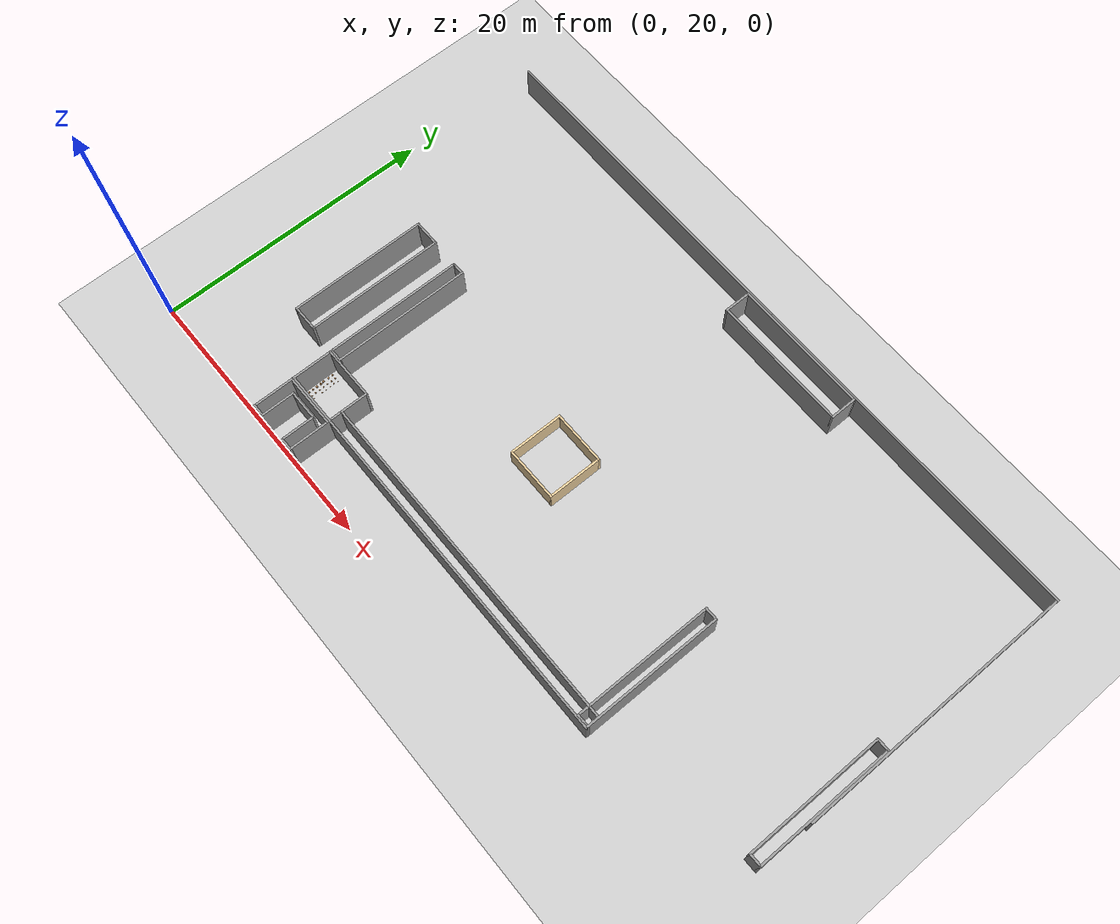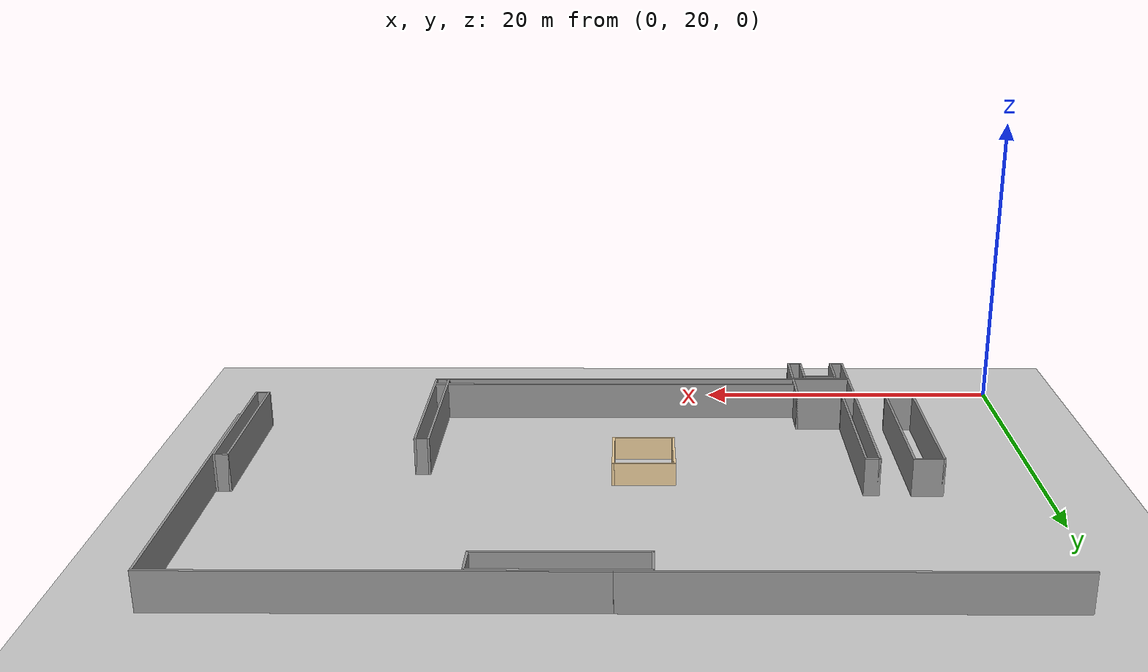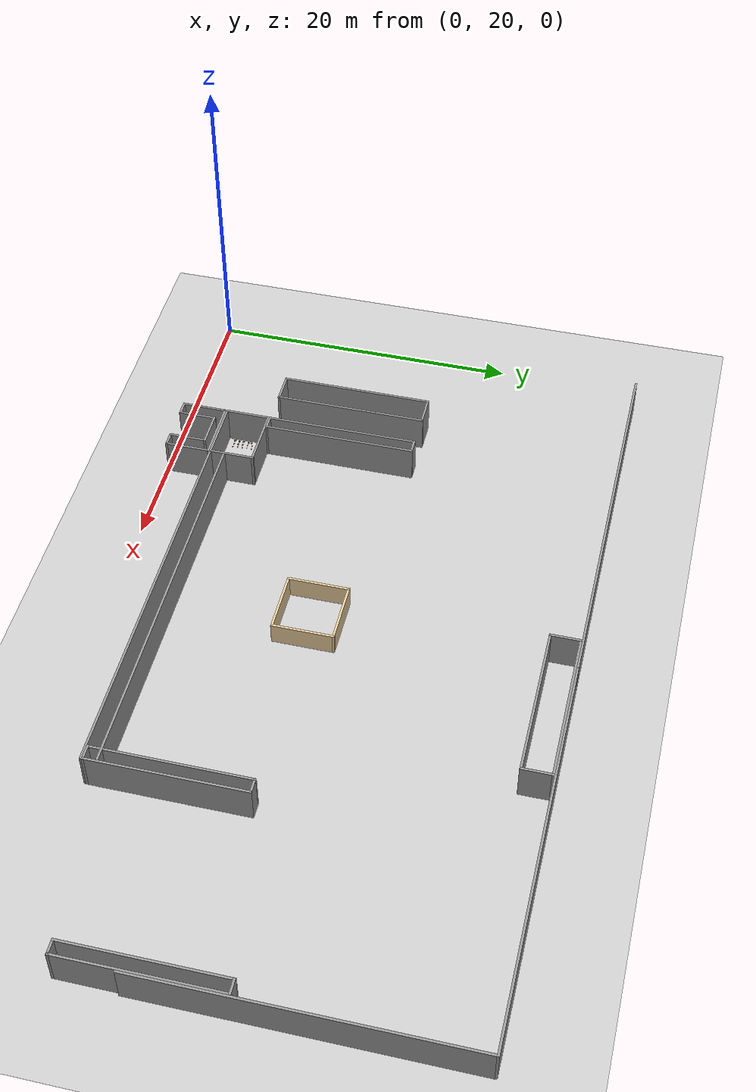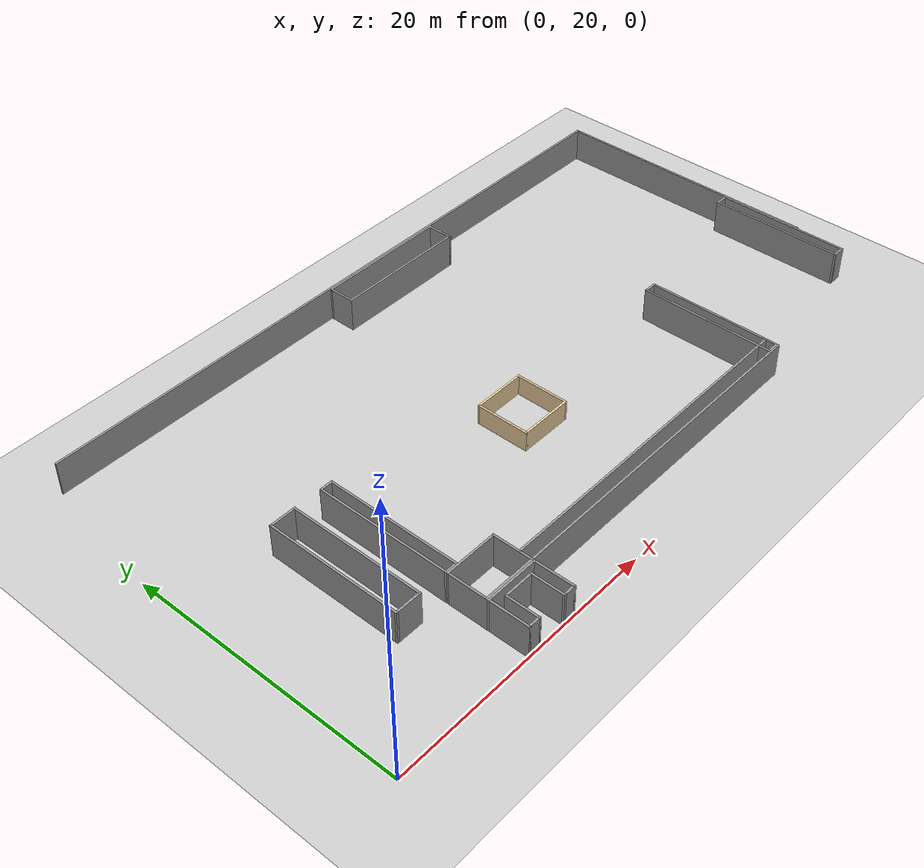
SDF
<sdf version="1.6">
 <world name="default">
  <model name="ground_plane">
   <static>1</static>
   <link name="link">
    <collision name="collision">
     <geometry><plane><normal>0 0 1</normal><size>105 105</size></plane></geometry>
     <surface>
      <contact><collide_bitmask>65535</collide_bitmask></contact>
      <friction><ode><mu>100</mu><mu2>50</mu2></ode></friction>
     </surface>
    </collision>
    <visual name="visual">
     <cast_shadows>0</cast_shadows>
     <geometry><plane><normal>0 0 1</normal><size>105 105</size></plane></geometry>
     <material>
      <script><uri>file://media/materials/scripts/gazebo.material</uri><name>Gazebo/Grey</name></script>
     </material>
    </visual>
   </link>
  </model>
  <model name="wall_25m_5">
   <pose>14.0033 49.3464 0 0 -0 0</pose>
   <link name="Wall_28">
    <collision name="Wall_28_Collision">
     <geometry><box><size>25 0.15 2.5</size></box></geometry>
     <pose>0 0 1.25 0 -0 0</pose>
    </collision>
    <visual name="Wall_28_Visual">
     <pose>0 0 1.25 0 -0 0</pose>
     <geometry><box><size>25 0.15 2.5</size></box></geometry>
     <material>
      <script><uri>file://media/materials/scripts/gazebo.material</uri><name>Gazebo/Grey</name></script>
      <ambient>1 1 1 1</ambient>
     </material>
     <meta><layer>0</layer></meta>
    </visual>
   </link>
   <static>1</static>
  </model>
  <model name="wall_25m_6">
   <pose>39.0043 49.3458 0 0 -0 0</pose>
   <link name="Wall_28">
    <collision name="Wall_28_Collision">
     <geometry><box><size>25 0.15 2.5</size></box></geometry>
     <pose>0 0 1.25 0 -0 0</pose>
    </collision>
    <visual name="Wall_28_Visual">
     <pose>0 0 1.25 0 -0 0</pose>
     <geometry><box><size>25 0.15 2.5</size></box></geometry>
     <material>
      <script><uri>file://media/materials/scripts/gazebo.material</uri><name>Gazebo/Grey</name></script>
      <ambient>1 1 1 1</ambient>
     </material>
     <meta><layer>0</layer></meta>
    </visual>
   </link>
   <static>1</static>
  </model>
  <model name="wall_v20m_6">
   <pose>51.4317 39.2751 0 0 -0 0</pose>
   <link name="Wall_35">
    <collision name="Wall_35_Collision">
     <geometry><box><size>20 0.15 2.5</size></box></geometry>
     <pose>0 0 1.25 0 -0 0</pose>
    </collision>
    <visual name="Wall_35_Visual">
     <pose>0 0 1.25 0 -0 0</pose>
     <geometry><box><size>20 0.15 2.5</size></box></geometry>
     <material>
      <script><uri>file://media/materials/scripts/gazebo.material</uri><name>Gazebo/Grey</name></script>
      <ambient>1 1 1 1</ambient>
     </material>
     <meta><layer>0</layer></meta>
    </visual>
    <pose>0 -0 0 0 -0 -1.5708</pose>
   </link>
   <static>1</static>
  </model>
  <model name="base10x1">
   <pose>10.8397 30.9726 0 0 -0 0</pose>
   <link name="Wall_15">
    <collision name="Wall_15_Collision">
     <geometry><box><size>10 0.15 2.5</size></box></geometry>
     <pose>0 0 1.25 0 -0 0</pose>
    </collision>
    <visual name="Wall_15_Visual">
     <pose>0 0 1.25 0 -0 0</pose>
     <geometry><box><size>10 0.15 2.5</size></box></geometry>
     <material>
      <script><uri>file://media/materials/scripts/gazebo.material</uri><name>Gazebo/Grey</name></script>
      <ambient>1 1 1 1</ambient>
     </material>
     <meta><layer>0</layer></meta>
    </visual>
    <pose>-0.425 0 0 0 -0 1.5708</pose>
   </link>
   <link name="Wall_16">
    <collision name="Wall_16_Collision">
     <geometry><box><size>1 0.15 2.5</size></box></geometry>
     <pose>0 0 1.25 0 -0 0</pose>
    </collision>
    <visual name="Wall_16_Visual">
     <pose>0 0 1.25 0 -0 0</pose>
     <geometry><box><size>1 0.15 2.5</size></box></geometry>
     <material>
      <script><uri>file://media/materials/scripts/gazebo.material</uri><name>Gazebo/Grey</name></script>
      <ambient>1 1 1 1</ambient>
     </material>
     <meta><layer>0</layer></meta>
    </visual>
    <pose>0 4.925 0 0 -0 0</pose>
   </link>
   <link name="Wall_17">
    <collision name="Wall_17_Collision">
     <geometry><box><size>10 0.15 2.5</size></box></geometry>
     <pose>0 0 1.25 0 -0 0</pose>
    </collision>
    <visual name="Wall_17_Visual">
     <pose>0 0 1.25 0 -0 0</pose>
     <geometry><box><size>10 0.15 2.5</size></box></geometry>
     <material>
      <script><uri>file://media/materials/scripts/gazebo.material</uri><name>Gazebo/Grey</name></script>
      <ambient>1 1 1 1</ambient>
     </material>
     <meta><layer>0</layer></meta>
    </visual>
    <pose>0.425 0 0 0 -0 -1.5708</pose>
   </link>
   <link name="Wall_18">
    <collision name="Wall_18_Collision">
     <geometry><box><size>1 0.15 2.5</size></box></geometry>
     <pose>0 0 1.25 0 -0 0</pose>
    </collision>
    <visual name="Wall_18_Visual">
     <pose>0 0 1.25 0 -0 0</pose>
     <geometry><box><size>1 0.15 2.5</size></box></geometry>
     <material>
      <script><uri>file://media/materials/scripts/gazebo.material</uri><name>Gazebo/Grey</name></script>
      <ambient>1 1 1 1</ambient>
     </material>
     <meta><layer>0</layer></meta>
    </visual>
    <pose>0 -4.925 0 0 -0 3.14159</pose>
   </link>
   <static>1</static>
  </model>
  <model name="base3x4_30">
   <pose>12.3458 24.5057 0 0 -0 0</pose>
   <link name="Wall_18">
    <collision name="Wall_18_Collision">
     <geometry><box><size>3 0.15 2.5</size></box></geometry>
     <pose>0 0 1.25 0 -0 0</pose>
    </collision>
    <visual name="Wall_18_Visual">
     <pose>0 0 1.25 0 -0 0</pose>
     <geometry><box><size>3 0.15 2.5</size></box></geometry>
     <material>
      <script><uri>file://media/materials/scripts/gazebo.material</uri><name>Gazebo/Grey</name></script>
      <ambient>1 1 1 1</ambient>
     </material>
     <meta><layer>0</layer></meta>
    </visual>
    <pose>-1.925 -0 0 0 -0 -1.5708</pose>
   </link>
   <link name="Wall_19">
    <collision name="Wall_19_Collision">
     <geometry><box><size>4 0.15 2.5</size></box></geometry>
     <pose>0 0 1.25 0 -0 0</pose>
    </collision>
    <visual name="Wall_19_Visual">
     <pose>0 0 1.25 0 -0 0</pose>
     <geometry><box><size>4 0.15 2.5</size></box></geometry>
     <material>
      <script><uri>file://media/materials/scripts/gazebo.material</uri><name>Gazebo/Grey</name></script>
      <ambient>1 1 1 1</ambient>
     </material>
     <meta><layer>0</layer></meta>
    </visual>
    <pose>-0 -1.425 0 0 -0 0</pose>
   </link>
   <link name="Wall_20">
    <collision name="Wall_20_Collision">
     <geometry><box><size>3 0.15 2.5</size></box></geometry>
     <pose>0 0 1.25 0 -0 0</pose>
    </collision>
    <visual name="Wall_20_Visual">
     <pose>0 0 1.25 0 -0 0</pose>
     <geometry><box><size>3 0.15 2.5</size></box></geometry>
     <material>
      <script><uri>file://media/materials/scripts/gazebo.material</uri><name>Gazebo/Grey</name></script>
      <ambient>1 1 1 1</ambient>
     </material>
     <meta><layer>0</layer></meta>
    </visual>
    <pose>1.925 -0 0 0 -0 1.5708</pose>
   </link>
   <link name="Wall_21">
    <collision name="Wall_21_Collision">
     <geometry><box><size>4 0.15 2.5</size></box></geometry>
     <pose>0 0 1.25 0 -0 0</pose>
    </collision>
    <visual name="Wall_21_Visual">
     <pose>0 0 1.25 0 -0 0</pose>
     <geometry><box><size>4 0.15 2.5</size></box></geometry>
     <material>
      <script><uri>file://media/materials/scripts/gazebo.material</uri><name>Gazebo/Grey</name></script>
      <ambient>1 1 1 1</ambient>
     </material>
     <meta><layer>0</layer></meta>
    </visual>
    <pose>-0 1.425 0 0 -0 3.14159</pose>
   </link>
   <static>1</static>
  </model>
  <model name="wall_25m_0">
   <pose>26.8412 23.0792 0 0 -0 0</pose>
   <link name="Wall_28">
    <collision name="Wall_28_Collision">
     <geometry><box><size>25 0.15 2.5</size></box></geometry>
     <pose>0 0 1.25 0 -0 0</pose>
    </collision>
    <visual name="Wall_28_Visual">
     <pose>0 0 1.25 0 -0 0</pose>
     <geometry><box><size>25 0.15 2.5</size></box></geometry>
     <material>
      <script><uri>file://media/materials/scripts/gazebo.material</uri><name>Gazebo/Grey</name></script>
      <ambient>1 1 1 1</ambient>
     </material>
     <meta><layer>0</layer></meta>
    </visual>
   </link>
   <static>1</static>
  </model>
  <model name="base10x1_1">
   <pose>38.8563 28.1195 0 0 -0 0</pose>
   <link name="Wall_15">
    <collision name="Wall_15_Collision">
     <geometry><box><size>10 0.15 2.5</size></box></geometry>
     <pose>0 0 1.25 0 -0 0</pose>
    </collision>
    <visual name="Wall_15_Visual">
     <pose>0 0 1.25 0 -0 0</pose>
     <geometry><box><size>10 0.15 2.5</size></box></geometry>
     <material>
      <script><uri>file://media/materials/scripts/gazebo.material</uri><name>Gazebo/Grey</name></script>
      <ambient>1 1 1 1</ambient>
     </material>
     <meta><layer>0</layer></meta>
    </visual>
    <pose>-0.425 0 0 0 -0 1.5708</pose>
   </link>
   <link name="Wall_16">
    <collision name="Wall_16_Collision">
     <geometry><box><size>1 0.15 2.5</size></box></geometry>
     <pose>0 0 1.25 0 -0 0</pose>
    </collision>
    <visual name="Wall_16_Visual">
     <pose>0 0 1.25 0 -0 0</pose>
     <geometry><box><size>1 0.15 2.5</size></box></geometry>
     <material>
      <script><uri>file://media/materials/scripts/gazebo.material</uri><name>Gazebo/Grey</name></script>
      <ambient>1 1 1 1</ambient>
     </material>
     <meta><layer>0</layer></meta>
    </visual>
    <pose>0 4.925 0 0 -0 0</pose>
   </link>
   <link name="Wall_17">
    <collision name="Wall_17_Collision">
     <geometry><box><size>10 0.15 2.5</size></box></geometry>
     <pose>0 0 1.25 0 -0 0</pose>
    </collision>
    <visual name="Wall_17_Visual">
     <pose>0 0 1.25 0 -0 0</pose>
     <geometry><box><size>10 0.15 2.5</size></box></geometry>
     <material>
      <script><uri>file://media/materials/scripts/gazebo.material</uri><name>Gazebo/Grey</name></script>
      <ambient>1 1 1 1</ambient>
     </material>
     <meta><layer>0</layer></meta>
    </visual>
    <pose>0.425 0 0 0 -0 -1.5708</pose>
   </link>
   <link name="Wall_18">
    <collision name="Wall_18_Collision">
     <geometry><box><size>1 0.15 2.5</size></box></geometry>
     <pose>0 0 1.25 0 -0 0</pose>
    </collision>
    <visual name="Wall_18_Visual">
     <pose>0 0 1.25 0 -0 0</pose>
     <geometry><box><size>1 0.15 2.5</size></box></geometry>
     <material>
      <script><uri>file://media/materials/scripts/gazebo.material</uri><name>Gazebo/Grey</name></script>
      <ambient>1 1 1 1</ambient>
     </material>
     <meta><layer>0</layer></meta>
    </visual>
    <pose>0 -4.925 0 0 -0 3.14159</pose>
   </link>
   <static>1</static>
  </model>
  <model name="wall_25m_2">
   <pose>26.7296 24.0129 0 0 -0 0</pose>
   <link name="Wall_28">
    <collision name="Wall_28_Collision">
     <geometry><box><size>25 0.15 2.5</size></box></geometry>
     <pose>0 0 1.25 0 -0 0</pose>
    </collision>
    <visual name="Wall_28_Visual">
     <pose>0 0 1.25 0 -0 0</pose>
     <geometry><box><size>25 0.15 2.5</size></box></geometry>
     <material>
      <script><uri>file://media/materials/scripts/gazebo.material</uri><name>Gazebo/Grey</name></script>
      <ambient>1 1 1 1</ambient>
     </material>
     <meta><layer>0</layer></meta>
    </visual>
   </link>
   <static>1</static>
  </model>
  <model name="wood_cube_10cm">
   <link name="link">
    <pose>0 0 0.05 0 -0 0</pose>
    <inertial>
     <mass>0.5167</mass>
     <inertia>
      <ixx>0.000861167</ixx>
      <ixy>0</ixy>
      <ixz>0</ixz>
      <iyy>0.000861167</iyy>
      <iyz>0</iyz>
      <izz>0.000861167</izz>
     </inertia>
    </inertial>
    <collision name="collision">
     <geometry><box><size>0.1 0.1 0.1</size></box></geometry>
     <surface>
      <contact>
       <poissons_ratio>0.347</poissons_ratio>
       <elastic_modulus>8.8e+09</elastic_modulus>
       <ode><kp>100000</kp><kd>100</kd><max_vel>100</max_vel><min_depth>0.001</min_depth></ode>
      </contact>
      <friction>
       <torsional>
        <coefficient>1</coefficient>
        <use_patch_radius>0</use_patch_radius>
        <surface_radius>0.01</surface_radius>
       </torsional>
      </friction>
     </surface>
    </collision>
    <visual name="visual">
     <geometry><box><size>0.1 0.1 0.1</size></box></geometry>
     <material>
      <script><uri>file://media/materials/scripts/gazebo.material</uri><name>Gazebo/Wood</name></script>
     </material>
    </visual>
   </link>
   <pose>10.6933 23.5723 -0.001013 0 -0 0</pose>
  </model>
  <model name="wood_cube_10cm_0">
   <link name="link">
    <pose>0 0 0.05 0 -0 0</pose>
    <inertial>
     <mass>0.5167</mass>
     <inertia>
      <ixx>0.000861167</ixx>
      <ixy>0</ixy>
      <ixz>0</ixz>
      <iyy>0.000861167</iyy>
      <iyz>0</iyz>
      <izz>0.000861167</izz>
     </inertia>
    </inertial>
    <collision name="collision">
     <geometry><box><size>0.1 0.1 0.1</size></box></geometry>
     <surface>
      <contact>
       <poissons_ratio>0.347</poissons_ratio>
       <elastic_modulus>8.8e+09</elastic_modulus>
       <ode><kp>100000</kp><kd>100</kd><max_vel>100</max_vel><min_depth>0.001</min_depth></ode>
      </contact>
      <friction>
       <torsional>
        <coefficient>1</coefficient>
        <use_patch_radius>0</use_patch_radius>
        <surface_radius>0.01</surface_radius>
       </torsional>
      </friction>
     </surface>
    </collision>
    <visual name="visual">
     <geometry><box><size>0.1 0.1 0.1</size></box></geometry>
     <material>
      <script><uri>file://media/materials/scripts/gazebo.material</uri><name>Gazebo/Wood</name></script>
     </material>
    </visual>
   </link>
   <pose>10.69 23.8636 -0.001013 0 -0 0</pose>
  </model>
  <model name="wood_cube_10cm_1">
   <link name="link">
    <pose>0 0 0.05 0 -0 0</pose>
    <inertial>
     <mass>0.5167</mass>
     <inertia>
      <ixx>0.000861167</ixx>
      <ixy>0</ixy>
      <ixz>0</ixz>
      <iyy>0.000861167</iyy>
      <iyz>0</iyz>
      <izz>0.000861167</izz>
     </inertia>
    </inertial>
    <collision name="collision">
     <geometry><box><size>0.1 0.1 0.1</size></box></geometry>
     <surface>
      <contact>
       <poissons_ratio>0.347</poissons_ratio>
       <elastic_modulus>8.8e+09</elastic_modulus>
       <ode><kp>100000</kp><kd>100</kd><max_vel>100</max_vel><min_depth>0.001</min_depth></ode>
      </contact>
      <friction>
       <torsional>
        <coefficient>1</coefficient>
        <use_patch_radius>0</use_patch_radius>
        <surface_radius>0.01</surface_radius>
       </torsional>
      </friction>
     </surface>
    </collision>
    <visual name="visual">
     <geometry><box><size>0.1 0.1 0.1</size></box></geometry>
     <material>
      <script><uri>file://media/materials/scripts/gazebo.material</uri><name>Gazebo/Wood</name></script>
     </material>
    </visual>
   </link>
   <pose>10.6798 24.1748 -0.001013 0 -0 0</pose>
  </model>
  <model name="wood_cube_10cm_2">
   <link name="link">
    <pose>0 0 0.05 0 -0 0</pose>
    <inertial>
     <mass>0.5167</mass>
     <inertia>
      <ixx>0.000861167</ixx>
      <ixy>0</ixy>
      <ixz>0</ixz>
      <iyy>0.000861167</iyy>
      <iyz>0</iyz>
      <izz>0.000861167</izz>
     </inertia>
    </inertial>
    <collision name="collision">
     <geometry><box><size>0.1 0.1 0.1</size></box></geometry>
     <surface>
      <contact>
       <poissons_ratio>0.347</poissons_ratio>
       <elastic_modulus>8.8e+09</elastic_modulus>
       <ode><kp>100000</kp><kd>100</kd><max_vel>100</max_vel><min_depth>0.001</min_depth></ode>
      </contact>
      <friction>
       <torsional>
        <coefficient>1</coefficient>
        <use_patch_radius>0</use_patch_radius>
        <surface_radius>0.01</surface_radius>
       </torsional>
      </friction>
     </surface>
    </collision>
    <visual name="visual">
     <geometry><box><size>0.1 0.1 0.1</size></box></geometry>
     <material>
      <script><uri>file://media/materials/scripts/gazebo.material</uri><name>Gazebo/Wood</name></script>
     </material>
    </visual>
   </link>
   <pose>10.676 24.5061 -0.001013 0 -0 0</pose>
  </model>
  <model name="wood_cube_10cm_3">
   <link name="link">
    <pose>0 0 0.05 0 -0 0</pose>
    <inertial>
     <mass>0.5167</mass>
     <inertia>
      <ixx>0.000861167</ixx>
      <ixy>0</ixy>
      <ixz>0</ixz>
      <iyy>0.000861167</iyy>
      <iyz>0</iyz>
      <izz>0.000861167</izz>
     </inertia>
    </inertial>
    <collision name="collision">
     <geometry><box><size>0.1 0.1 0.1</size></box></geometry>
     <surface>
      <contact>
       <poissons_ratio>0.347</poissons_ratio>
       <elastic_modulus>8.8e+09</elastic_modulus>
       <ode><kp>100000</kp><kd>100</kd><max_vel>100</max_vel><min_depth>0.001</min_depth></ode>
      </contact>
      <friction>
       <torsional>
        <coefficient>1</coefficient>
        <use_patch_radius>0</use_patch_radius>
        <surface_radius>0.01</surface_radius>
       </torsional>
      </friction>
     </surface>
    </collision>
    <visual name="visual">
     <geometry><box><size>0.1 0.1 0.1</size></box></geometry>
     <material>
      <script><uri>file://media/materials/scripts/gazebo.material</uri><name>Gazebo/Wood</name></script>
     </material>
    </visual>
   </link>
   <pose>10.6607 24.7274 -0.001013 0 0 -1.09026</pose>
  </model>
  <model name="wood_cube_10cm_4">
   <link name="link">
    <pose>0 0 0.05 0 -0 0</pose>
    <inertial>
     <mass>0.5167</mass>
     <inertia>
      <ixx>0.000861167</ixx>
      <ixy>0</ixy>
      <ixz>0</ixz>
      <iyy>0.000861167</iyy>
      <iyz>0</iyz>
      <izz>0.000861167</izz>
     </inertia>
    </inertial>
    <collision name="collision">
     <geometry><box><size>0.1 0.1 0.1</size></box></geometry>
     <surface>
      <contact>
       <poissons_ratio>0.347</poissons_ratio>
       <elastic_modulus>8.8e+09</elastic_modulus>
       <ode><kp>100000</kp><kd>100</kd><max_vel>100</max_vel><min_depth>0.001</min_depth></ode>
      </contact>
      <friction>
       <torsional>
        <coefficient>1</coefficient>
        <use_patch_radius>0</use_patch_radius>
        <surface_radius>0.01</surface_radius>
       </torsional>
      </friction>
     </surface>
    </collision>
    <visual name="visual">
     <geometry><box><size>0.1 0.1 0.1</size></box></geometry>
     <material>
      <script><uri>file://media/materials/scripts/gazebo.material</uri><name>Gazebo/Wood</name></script>
     </material>
    </visual>
   </link>
   <pose>10.6691 25.1156 -0.001013 0 -0 0</pose>
  </model>
  <model name="wood_cube_10cm_5">
   <link name="link">
    <pose>0 0 0.05 0 -0 0</pose>
    <inertial>
     <mass>0.5167</mass>
     <inertia>
      <ixx>0.000861167</ixx>
      <ixy>0</ixy>
      <ixz>0</ixz>
      <iyy>0.000861167</iyy>
      <iyz>0</iyz>
      <izz>0.000861167</izz>
     </inertia>
    </inertial>
    <collision name="collision">
     <geometry><box><size>0.1 0.1 0.1</size></box></geometry>
     <surface>
      <contact>
       <poissons_ratio>0.347</poissons_ratio>
       <elastic_modulus>8.8e+09</elastic_modulus>
       <ode><kp>100000</kp><kd>100</kd><max_vel>100</max_vel><min_depth>0.001</min_depth></ode>
      </contact>
      <friction>
       <torsional>
        <coefficient>1</coefficient>
        <use_patch_radius>0</use_patch_radius>
        <surface_radius>0.01</surface_radius>
       </torsional>
      </friction>
     </surface>
    </collision>
    <visual name="visual">
     <geometry><box><size>0.1 0.1 0.1</size></box></geometry>
     <material>
      <script><uri>file://media/materials/scripts/gazebo.material</uri><name>Gazebo/Wood</name></script>
     </material>
    </visual>
   </link>
   <pose>10.6522 25.4397 -0.001013 0 -0 0</pose>
  </model>
  <model name="wood_cube_7_5cm">
   <link name="link">
    <pose>0 0 0.0375 0 -0 0</pose>
    <inertial>
     <mass>0.2249</mass>
     <inertia>
      <ixx>0.000210844</ixx>
      <ixy>0</ixy>
      <ixz>0</ixz>
      <iyy>0.000210844</iyy>
      <iyz>0</iyz>
      <izz>0.000210844</izz>
     </inertia>
    </inertial>
    <collision name="collision">
     <geometry><box><size>0.075 0.075 0.075</size></box></geometry>
     <surface>
      <contact>
       <poissons_ratio>0.347</poissons_ratio>
       <elastic_modulus>8.8e+09</elastic_modulus>
       <ode><kp>100000</kp><kd>100</kd><max_vel>100</max_vel><min_depth>0.001</min_depth></ode>
      </contact>
      <friction>
       <torsional>
        <coefficient>1</coefficient>
        <use_patch_radius>0</use_patch_radius>
        <surface_radius>0.01</surface_radius>
       </torsional>
      </friction>
     </surface>
    </collision>
    <visual name="visual">
     <geometry><box><size>0.075 0.075 0.075</size></box></geometry>
     <material>
      <script><uri>file://media/materials/scripts/gazebo.material</uri><name>Gazebo/Wood</name></script>
     </material>
    </visual>
   </link>
   <pose>11.0047 23.569 -0.001006 -0 -0 -0</pose>
  </model>
  <model name="wood_cube_7_5cm_0">
   <link name="link">
    <pose>0 0 0.0375 0 -0 0</pose>
    <inertial>
     <mass>0.2249</mass>
     <inertia>
      <ixx>0.000210844</ixx>
      <ixy>0</ixy>
      <ixz>0</ixz>
      <iyy>0.000210844</iyy>
      <iyz>0</iyz>
      <izz>0.000210844</izz>
     </inertia>
    </inertial>
    <collision name="collision">
     <geometry><box><size>0.075 0.075 0.075</size></box></geometry>
     <surface>
      <contact>
       <poissons_ratio>0.347</poissons_ratio>
       <elastic_modulus>8.8e+09</elastic_modulus>
       <ode><kp>100000</kp><kd>100</kd><max_vel>100</max_vel><min_depth>0.001</min_depth></ode>
      </contact>
      <friction>
       <torsional>
        <coefficient>1</coefficient>
        <use_patch_radius>0</use_patch_radius>
        <surface_radius>0.01</surface_radius>
       </torsional>
      </friction>
     </surface>
    </collision>
    <visual name="visual">
     <geometry><box><size>0.075 0.075 0.075</size></box></geometry>
     <material>
      <script><uri>file://media/materials/scripts/gazebo.material</uri><name>Gazebo/Wood</name></script>
     </material>
    </visual>
   </link>
   <pose>10.9881 23.8737 -0.001006 -0 -0 -0</pose>
  </model>
  <model name="wood_cube_7_5cm_1">
   <link name="link">
    <pose>0 0 0.0375 0 -0 0</pose>
    <inertial>
     <mass>0.2249</mass>
     <inertia>
      <ixx>0.000210844</ixx>
      <ixy>0</ixy>
      <ixz>0</ixz>
      <iyy>0.000210844</iyy>
      <iyz>0</iyz>
      <izz>0.000210844</izz>
     </inertia>
    </inertial>
    <collision name="collision">
     <geometry><box><size>0.075 0.075 0.075</size></box></geometry>
     <surface>
      <contact>
       <poissons_ratio>0.347</poissons_ratio>
       <elastic_modulus>8.8e+09</elastic_modulus>
       <ode><kp>100000</kp><kd>100</kd><max_vel>100</max_vel><min_depth>0.001</min_depth></ode>
      </contact>
      <friction>
       <torsional>
        <coefficient>1</coefficient>
        <use_patch_radius>0</use_patch_radius>
        <surface_radius>0.01</surface_radius>
       </torsional>
      </friction>
     </surface>
    </collision>
    <visual name="visual">
     <geometry><box><size>0.075 0.075 0.075</size></box></geometry>
     <material>
      <script><uri>file://media/materials/scripts/gazebo.material</uri><name>Gazebo/Wood</name></script>
     </material>
    </visual>
   </link>
   <pose>10.9777 24.1915 -0.001006 -0 -0 -0</pose>
  </model>
  <model name="wood_cube_7_5cm_2">
   <link name="link">
    <pose>0 0 0.0375 0 -0 0</pose>
    <inertial>
     <mass>0.2249</mass>
     <inertia>
      <ixx>0.000210844</ixx>
      <ixy>0</ixy>
      <ixz>0</ixz>
      <iyy>0.000210844</iyy>
      <iyz>0</iyz>
      <izz>0.000210844</izz>
     </inertia>
    </inertial>
    <collision name="collision">
     <geometry><box><size>0.075 0.075 0.075</size></box></geometry>
     <surface>
      <contact>
       <poissons_ratio>0.347</poissons_ratio>
       <elastic_modulus>8.8e+09</elastic_modulus>
       <ode><kp>100000</kp><kd>100</kd><max_vel>100</max_vel><min_depth>0.001</min_depth></ode>
      </contact>
      <friction>
       <torsional>
        <coefficient>1</coefficient>
        <use_patch_radius>0</use_patch_radius>
        <surface_radius>0.01</surface_radius>
       </torsional>
      </friction>
     </surface>
    </collision>
    <visual name="visual">
     <geometry><box><size>0.075 0.075 0.075</size></box></geometry>
     <material>
      <script><uri>file://media/materials/scripts/gazebo.material</uri><name>Gazebo/Wood</name></script>
     </material>
    </visual>
   </link>
   <pose>10.9676 24.5094 -0.001006 -0 -0 -0</pose>
  </model>
  <model name="wood_cube_7_5cm_3">
   <link name="link">
    <pose>0 0 0.0375 0 -0 0</pose>
    <inertial>
     <mass>0.2249</mass>
     <inertia>
      <ixx>0.000210844</ixx>
      <ixy>0</ixy>
      <ixz>0</ixz>
      <iyy>0.000210844</iyy>
      <iyz>0</iyz>
      <izz>0.000210844</izz>
     </inertia>
    </inertial>
    <collision name="collision">
     <geometry><box><size>0.075 0.075 0.075</size></box></geometry>
     <surface>
      <contact>
       <poissons_ratio>0.347</poissons_ratio>
       <elastic_modulus>8.8e+09</elastic_modulus>
       <ode><kp>100000</kp><kd>100</kd><max_vel>100</max_vel><min_depth>0.001</min_depth></ode>
      </contact>
      <friction>
       <torsional>
        <coefficient>1</coefficient>
        <use_patch_radius>0</use_patch_radius>
        <surface_radius>0.01</surface_radius>
       </torsional>
      </friction>
     </surface>
    </collision>
    <visual name="visual">
     <geometry><box><size>0.075 0.075 0.075</size></box></geometry>
     <material>
      <script><uri>file://media/materials/scripts/gazebo.material</uri><name>Gazebo/Wood</name></script>
     </material>
    </visual>
   </link>
   <pose>10.9506 24.8272 -0.001006 0 -0 1.5e-05</pose>
  </model>
  <model name="wood_cube_7_5cm_4">
   <link name="link">
    <pose>0 0 0.0375 0 -0 0</pose>
    <inertial>
     <mass>0.2249</mass>
     <inertia>
      <ixx>0.000210844</ixx>
      <ixy>0</ixy>
      <ixz>0</ixz>
      <iyy>0.000210844</iyy>
      <iyz>0</iyz>
      <izz>0.000210844</izz>
     </inertia>
    </inertial>
    <collision name="collision">
     <geometry><box><size>0.075 0.075 0.075</size></box></geometry>
     <surface>
      <contact>
       <poissons_ratio>0.347</poissons_ratio>
       <elastic_modulus>8.8e+09</elastic_modulus>
       <ode><kp>100000</kp><kd>100</kd><max_vel>100</max_vel><min_depth>0.001</min_depth></ode>
      </contact>
      <friction>
       <torsional>
        <coefficient>1</coefficient>
        <use_patch_radius>0</use_patch_radius>
        <surface_radius>0.01</surface_radius>
       </torsional>
      </friction>
     </surface>
    </collision>
    <visual name="visual">
     <geometry><box><size>0.075 0.075 0.075</size></box></geometry>
     <material>
      <script><uri>file://media/materials/scripts/gazebo.material</uri><name>Gazebo/Wood</name></script>
     </material>
    </visual>
   </link>
   <pose>10.9473 25.1252 -0.001006 0 -0 5e-06</pose>
  </model>
  <model name="wood_cube_7_5cm_5">
   <link name="link">
    <pose>0 0 0.0375 0 -0 0</pose>
    <inertial>
     <mass>0.2249</mass>
     <inertia>
      <ixx>0.000210844</ixx>
      <ixy>0</ixy>
      <ixz>0</ixz>
      <iyy>0.000210844</iyy>
      <iyz>0</iyz>
      <izz>0.000210844</izz>
     </inertia>
    </inertial>
    <collision name="collision">
     <geometry><box><size>0.075 0.075 0.075</size></box></geometry>
     <surface>
      <contact>
       <poissons_ratio>0.347</poissons_ratio>
       <elastic_modulus>8.8e+09</elastic_modulus>
       <ode><kp>100000</kp><kd>100</kd><max_vel>100</max_vel><min_depth>0.001</min_depth></ode>
      </contact>
      <friction>
       <torsional>
        <coefficient>1</coefficient>
        <use_patch_radius>0</use_patch_radius>
        <surface_radius>0.01</surface_radius>
       </torsional>
      </friction>
     </surface>
    </collision>
    <visual name="visual">
     <geometry><box><size>0.075 0.075 0.075</size></box></geometry>
     <material>
      <script><uri>file://media/materials/scripts/gazebo.material</uri><name>Gazebo/Wood</name></script>
     </material>
    </visual>
   </link>
   <pose>10.9436 25.4497 -0.001006 -0 -0 -0</pose>
  </model>
  <model name="wood_cube_5cm">
   <link name="link">
    <pose>0 0 0.025 0 -0 0</pose>
    <inertial>
     <mass>0.0565</mass>
     <inertia>
      <ixx>2.35417e-05</ixx>
      <ixy>0</ixy>
      <ixz>0</ixz>
      <iyy>2.35417e-05</iyy>
      <iyz>0</iyz>
      <izz>2.35417e-05</izz>
     </inertia>
    </inertial>
    <collision name="collision">
     <geometry><box><size>0.05 0.05 0.05</size></box></geometry>
     <surface>
      <contact>
       <poissons_ratio>0.347</poissons_ratio>
       <elastic_modulus>8.8e+09</elastic_modulus>
       <ode><kp>100000</kp><kd>1</kd><max_vel>1</max_vel><min_depth>0.001</min_depth></ode>
      </contact>
      <friction>
       <torsional>
        <coefficient>1</coefficient>
        <use_patch_radius>0</use_patch_radius>
        <surface_radius>0.05</surface_radius>
       </torsional>
      </friction>
     </surface>
    </collision>
    <visual name="visual">
     <geometry><box><size>0.05 0.05 0.05</size></box></geometry>
     <material>
      <script><uri>file://media/materials/scripts/gazebo.material</uri><name>Gazebo/Wood</name></script>
     </material>
    </visual>
   </link>
   <pose>11.2698 23.5655 -0.001001 0 -0 0</pose>
  </model>
  <model name="wood_cube_5cm_0">
   <link name="link">
    <pose>0 0 0.025 0 -0 0</pose>
    <inertial>
     <mass>0.0565</mass>
     <inertia>
      <ixx>2.35417e-05</ixx>
      <ixy>0</ixy>
      <ixz>0</ixz>
      <iyy>2.35417e-05</iyy>
      <iyz>0</iyz>
      <izz>2.35417e-05</izz>
     </inertia>
    </inertial>
    <collision name="collision">
     <geometry><box><size>0.05 0.05 0.05</size></box></geometry>
     <surface>
      <contact>
       <poissons_ratio>0.347</poissons_ratio>
       <elastic_modulus>8.8e+09</elastic_modulus>
       <ode><kp>100000</kp><kd>1</kd><max_vel>1</max_vel><min_depth>0.001</min_depth></ode>
      </contact>
      <friction>
       <torsional>
        <coefficient>1</coefficient>
        <use_patch_radius>0</use_patch_radius>
        <surface_radius>0.05</surface_radius>
       </torsional>
      </friction>
     </surface>
    </collision>
    <visual name="visual">
     <geometry><box><size>0.05 0.05 0.05</size></box></geometry>
     <material>
      <script><uri>file://media/materials/scripts/gazebo.material</uri><name>Gazebo/Wood</name></script>
     </material>
    </visual>
   </link>
   <pose>11.2265 23.8764 -0.001001 0 -0 0</pose>
  </model>
  <model name="wood_cube_5cm_1">
   <link name="link">
    <pose>0 0 0.025 0 -0 0</pose>
    <inertial>
     <mass>0.0565</mass>
     <inertia>
      <ixx>2.35417e-05</ixx>
      <ixy>0</ixy>
      <ixz>0</ixz>
      <iyy>2.35417e-05</iyy>
      <iyz>0</iyz>
      <izz>2.35417e-05</izz>
     </inertia>
    </inertial>
    <collision name="collision">
     <geometry><box><size>0.05 0.05 0.05</size></box></geometry>
     <surface>
      <contact>
       <poissons_ratio>0.347</poissons_ratio>
       <elastic_modulus>8.8e+09</elastic_modulus>
       <ode><kp>100000</kp><kd>1</kd><max_vel>1</max_vel><min_depth>0.001</min_depth></ode>
      </contact>
      <friction>
       <torsional>
        <coefficient>1</coefficient>
        <use_patch_radius>0</use_patch_radius>
        <surface_radius>0.05</surface_radius>
       </torsional>
      </friction>
     </surface>
    </collision>
    <visual name="visual">
     <geometry><box><size>0.05 0.05 0.05</size></box></geometry>
     <material>
      <script><uri>file://media/materials/scripts/gazebo.material</uri><name>Gazebo/Wood</name></script>
     </material>
    </visual>
   </link>
   <pose>11.2228 24.2076 -0.001001 0 -0 0</pose>
  </model>
  <model name="wood_cube_5cm_2">
   <link name="link">
    <pose>0 0 0.025 0 -0 0</pose>
    <inertial>
     <mass>0.0565</mass>
     <inertia>
      <ixx>2.35417e-05</ixx>
      <ixy>0</ixy>
      <ixz>0</ixz>
      <iyy>2.35417e-05</iyy>
      <iyz>0</iyz>
      <izz>2.35417e-05</izz>
     </inertia>
    </inertial>
    <collision name="collision">
     <geometry><box><size>0.05 0.05 0.05</size></box></geometry>
     <surface>
      <contact>
       <poissons_ratio>0.347</poissons_ratio>
       <elastic_modulus>8.8e+09</elastic_modulus>
       <ode><kp>100000</kp><kd>1</kd><max_vel>1</max_vel><min_depth>0.001</min_depth></ode>
      </contact>
      <friction>
       <torsional>
        <coefficient>1</coefficient>
        <use_patch_radius>0</use_patch_radius>
        <surface_radius>0.05</surface_radius>
       </torsional>
      </friction>
     </surface>
    </collision>
    <visual name="visual">
     <geometry><box><size>0.05 0.05 0.05</size></box></geometry>
     <material>
      <script><uri>file://media/materials/scripts/gazebo.material</uri><name>Gazebo/Wood</name></script>
     </material>
    </visual>
   </link>
   <pose>11.2193 24.5122 -0.001001 0 -0 0</pose>
  </model>
  <model name="wood_cube_5cm_3">
   <link name="link">
    <pose>0 0 0.025 0 -0 0</pose>
    <inertial>
     <mass>0.0565</mass>
     <inertia>
      <ixx>2.35417e-05</ixx>
      <ixy>0</ixy>
      <ixz>0</ixz>
      <iyy>2.35417e-05</iyy>
      <iyz>0</iyz>
      <izz>2.35417e-05</izz>
     </inertia>
    </inertial>
    <collision name="collision">
     <geometry><box><size>0.05 0.05 0.05</size></box></geometry>
     <surface>
      <contact>
       <poissons_ratio>0.347</poissons_ratio>
       <elastic_modulus>8.8e+09</elastic_modulus>
       <ode><kp>100000</kp><kd>1</kd><max_vel>1</max_vel><min_depth>0.001</min_depth></ode>
      </contact>
      <friction>
       <torsional>
        <coefficient>1</coefficient>
        <use_patch_radius>0</use_patch_radius>
        <surface_radius>0.05</surface_radius>
       </torsional>
      </friction>
     </surface>
    </collision>
    <visual name="visual">
     <geometry><box><size>0.05 0.05 0.05</size></box></geometry>
     <material>
      <script><uri>file://media/materials/scripts/gazebo.material</uri><name>Gazebo/Wood</name></script>
     </material>
    </visual>
   </link>
   <pose>11.2221 24.8504 -0.001001 0 -0 0</pose>
  </model>
  <model name="wood_cube_5cm_4">
   <link name="link">
    <pose>0 0 0.025 0 -0 0</pose>
    <inertial>
     <mass>0.0565</mass>
     <inertia>
      <ixx>2.35417e-05</ixx>
      <ixy>0</ixy>
      <ixz>0</ixz>
      <iyy>2.35417e-05</iyy>
      <iyz>0</iyz>
      <izz>2.35417e-05</izz>
     </inertia>
    </inertial>
    <collision name="collision">
     <geometry><box><size>0.05 0.05 0.05</size></box></geometry>
     <surface>
      <contact>
       <poissons_ratio>0.347</poissons_ratio>
       <elastic_modulus>8.8e+09</elastic_modulus>
       <ode><kp>100000</kp><kd>1</kd><max_vel>1</max_vel><min_depth>0.001</min_depth></ode>
      </contact>
      <friction>
       <torsional>
        <coefficient>1</coefficient>
        <use_patch_radius>0</use_patch_radius>
        <surface_radius>0.05</surface_radius>
       </torsional>
      </friction>
     </surface>
    </collision>
    <visual name="visual">
     <geometry><box><size>0.05 0.05 0.05</size></box></geometry>
     <material>
      <script><uri>file://media/materials/scripts/gazebo.material</uri><name>Gazebo/Wood</name></script>
     </material>
    </visual>
   </link>
   <pose>11.1789 25.1545 -0.001001 0 -0 0</pose>
  </model>
  <model name="wood_cube_5cm_5">
   <link name="link">
    <pose>0 0 0.025 0 -0 0</pose>
    <inertial>
     <mass>0.0565</mass>
     <inertia>
      <ixx>2.35417e-05</ixx>
      <ixy>0</ixy>
      <ixz>0</ixz>
      <iyy>2.35417e-05</iyy>
      <iyz>0</iyz>
      <izz>2.35417e-05</izz>
     </inertia>
    </inertial>
    <collision name="collision">
     <geometry><box><size>0.05 0.05 0.05</size></box></geometry>
     <surface>
      <contact>
       <poissons_ratio>0.347</poissons_ratio>
       <elastic_modulus>8.8e+09</elastic_modulus>
       <ode><kp>100000</kp><kd>1</kd><max_vel>1</max_vel><min_depth>0.001</min_depth></ode>
      </contact>
      <friction>
       <torsional>
        <coefficient>1</coefficient>
        <use_patch_radius>0</use_patch_radius>
        <surface_radius>0.05</surface_radius>
       </torsional>
      </friction>
     </surface>
    </collision>
    <visual name="visual">
     <geometry><box><size>0.05 0.05 0.05</size></box></geometry>
     <material>
      <script><uri>file://media/materials/scripts/gazebo.material</uri><name>Gazebo/Wood</name></script>
     </material>
    </visual>
   </link>
   <pose>11.2217 25.4529 -0.001001 0 -0 0</pose>
  </model>
  <model name="box4x4x1.5">
   <pose>24.8277 32.6302 0 0 -0 0</pose>
   <link name="Wall_5">
    <collision name="Wall_5_Collision">
     <geometry><box><size>4 0.15 1.5</size></box></geometry>
     <pose>0 0 0.75 0 -0 0</pose>
    </collision>
    <visual name="Wall_5_Visual">
     <pose>0 0 0.75 0 -0 0</pose>
     <geometry><box><size>4 0.15 1.5</size></box></geometry>
     <material>
      <script><uri>file://media/materials/scripts/gazebo.material</uri><name>Gazebo/Grey</name></script>
      <ambient>0.921569 0.807843 0.615686 1</ambient>
     </material>
     <meta><layer>0</layer></meta>
    </visual>
    <pose>-1.925 -0 0 0 -0 -1.5708</pose>
   </link>
   <link name="Wall_6">
    <collision name="Wall_6_Collision">
     <geometry><box><size>4 0.15 1.5</size></box></geometry>
     <pose>0 0 0.75 0 -0 0</pose>
    </collision>
    <visual name="Wall_6_Visual">
     <pose>0 0 0.75 0 -0 0</pose>
     <geometry><box><size>4 0.15 1.5</size></box></geometry>
     <material>
      <script><uri>file://media/materials/scripts/gazebo.material</uri><name>Gazebo/Grey</name></script>
      <ambient>0.921569 0.807843 0.615686 1</ambient>
     </material>
     <meta><layer>0</layer></meta>
    </visual>
    <pose>0 -1.925 0 0 -0 0</pose>
   </link>
   <link name="Wall_7">
    <collision name="Wall_7_Collision">
     <geometry><box><size>4 0.15 1.5</size></box></geometry>
     <pose>0 0 0.75 0 -0 0</pose>
    </collision>
    <visual name="Wall_7_Visual">
     <pose>0 0 0.75 0 -0 0</pose>
     <geometry><box><size>4 0.15 1.5</size></box></geometry>
     <material>
      <script><uri>file://media/materials/scripts/gazebo.material</uri><name>Gazebo/Grey</name></script>
      <ambient>0.921569 0.807843 0.615686 1</ambient>
     </material>
     <meta><layer>0</layer></meta>
    </visual>
    <pose>1.925 -0 0 0 -0 1.5708</pose>
   </link>
   <link name="Wall_8">
    <collision name="Wall_8_Collision">
     <geometry><box><size>4 0.15 1.5</size></box></geometry>
     <pose>0 0 0.75 0 -0 0</pose>
    </collision>
    <visual name="Wall_8_Visual">
     <pose>0 0 0.75 0 -0 0</pose>
     <geometry><box><size>4 0.15 1.5</size></box></geometry>
     <material>
      <script><uri>file://media/materials/scripts/gazebo.material</uri><name>Gazebo/Grey</name></script>
      <ambient>0.921569 0.807843 0.615686 1</ambient>
     </material>
     <meta><layer>0</layer></meta>
    </visual>
    <pose>0 1.925 0 0 -0 3.14159</pose>
   </link>
   <static>1</static>
  </model>
  <model name="base10x2_1">
   <pose>7.40132 31.0288 0 0 -0 0</pose>
   <link name="Wall_20">
    <collision name="Wall_20_Collision">
     <geometry><box><size>2 0.15 2.5</size></box></geometry>
     <pose>0 0 1.25 0 -0 0</pose>
    </collision>
    <visual name="Wall_20_Visual">
     <pose>0 0 1.25 0 -0 0</pose>
     <geometry><box><size>2 0.15 2.5</size></box></geometry>
     <material>
      <script><uri>file://media/materials/scripts/gazebo.material</uri><name>Gazebo/Grey</name></script>
      <ambient>1 1 1 1</ambient>
     </material>
     <meta><layer>0</layer></meta>
    </visual>
    <pose>0 4.925 0 0 -0 0</pose>
   </link>
   <link name="Wall_21">
    <collision name="Wall_21_Collision">
     <geometry><box><size>10 0.15 2.5</size></box></geometry>
     <pose>0 0 1.25 0 -0 0</pose>
    </collision>
    <visual name="Wall_21_Visual">
     <pose>0 0 1.25 0 -0 0</pose>
     <geometry><box><size>10 0.15 2.5</size></box></geometry>
     <material>
      <script><uri>file://media/materials/scripts/gazebo.material</uri><name>Gazebo/Grey</name></script>
      <ambient>1 1 1 1</ambient>
     </material>
     <meta><layer>0</layer></meta>
    </visual>
    <pose>0.925 -0 0 0 -0 -1.5708</pose>
   </link>
   <link name="Wall_22">
    <collision name="Wall_22_Collision">
     <geometry><box><size>2 0.15 2.5</size></box></geometry>
     <pose>0 0 1.25 0 -0 0</pose>
    </collision>
    <visual name="Wall_22_Visual">
     <pose>0 0 1.25 0 -0 0</pose>
     <geometry><box><size>2 0.15 2.5</size></box></geometry>
     <material>
      <script><uri>file://media/materials/scripts/gazebo.material</uri><name>Gazebo/Grey</name></script>
      <ambient>1 1 1 1</ambient>
     </material>
     <meta><layer>0</layer></meta>
    </visual>
    <pose>0 -4.925 0 0 -0 3.14159</pose>
   </link>
   <link name="Wall_23">
    <collision name="Wall_23_Collision">
     <geometry><box><size>10 0.15 2.5</size></box></geometry>
     <pose>0 0 1.25 0 -0 0</pose>
    </collision>
    <visual name="Wall_23_Visual">
     <pose>0 0 1.25 0 -0 0</pose>
     <geometry><box><size>10 0.15 2.5</size></box></geometry>
     <material>
      <script><uri>file://media/materials/scripts/gazebo.material</uri><name>Gazebo/Grey</name></script>
      <ambient>1 1 1 1</ambient>
     </material>
     <meta><layer>0</layer></meta>
    </visual>
    <pose>-0.925 -0 0 0 -0 1.5708</pose>
   </link>
   <static>1</static>
  </model>
  <model name="base2x10">
   <pose>29.3485 48.2822 0 0 -0 0</pose>
   <link name="Wall_10">
    <collision name="Wall_10_Collision">
     <geometry><box><size>2 0.15 2.5</size></box></geometry>
     <pose>0 0 1.25 0 -0 0</pose>
    </collision>
    <visual name="Wall_10_Visual">
     <pose>0 0 1.25 0 -0 0</pose>
     <geometry><box><size>2 0.15 2.5</size></box></geometry>
     <material>
      <script><uri>file://media/materials/scripts/gazebo.material</uri><name>Gazebo/Grey</name></script>
      <ambient>1 1 1 1</ambient>
     </material>
     <meta><layer>0</layer></meta>
    </visual>
    <pose>-4.925 0 0 0 -0 -1.5708</pose>
   </link>
   <link name="Wall_11">
    <collision name="Wall_11_Collision">
     <geometry><box><size>10 0.15 2.5</size></box></geometry>
     <pose>0 0 1.25 0 -0 0</pose>
    </collision>
    <visual name="Wall_11_Visual">
     <pose>0 0 1.25 0 -0 0</pose>
     <geometry><box><size>10 0.15 2.5</size></box></geometry>
     <material>
      <script><uri>file://media/materials/scripts/gazebo.material</uri><name>Gazebo/Grey</name></script>
      <ambient>1 1 1 1</ambient>
     </material>
     <meta><layer>0</layer></meta>
    </visual>
    <pose>0 -0.925 0 0 -0 0</pose>
   </link>
   <link name="Wall_12">
    <collision name="Wall_12_Collision">
     <geometry><box><size>2 0.15 2.5</size></box></geometry>
     <pose>0 0 1.25 0 -0 0</pose>
    </collision>
    <visual name="Wall_12_Visual">
     <pose>0 0 1.25 0 -0 0</pose>
     <geometry><box><size>2 0.15 2.5</size></box></geometry>
     <material>
      <script><uri>file://media/materials/scripts/gazebo.material</uri><name>Gazebo/Grey</name></script>
      <ambient>1 1 1 1</ambient>
     </material>
     <meta><layer>0</layer></meta>
    </visual>
    <pose>4.925 0 0 0 -0 1.5708</pose>
   </link>
   <link name="Wall_13">
    <collision name="Wall_13_Collision">
     <geometry><box><size>10 0.15 2.5</size></box></geometry>
     <pose>0 0 1.25 0 -0 0</pose>
    </collision>
    <visual name="Wall_13_Visual">
     <pose>0 0 1.25 0 -0 0</pose>
     <geometry><box><size>10 0.15 2.5</size></box></geometry>
     <material>
      <script><uri>file://media/materials/scripts/gazebo.material</uri><name>Gazebo/Grey</name></script>
      <ambient>1 1 1 1</ambient>
     </material>
     <meta><layer>0</layer></meta>
    </visual>
    <pose>0 0.925 0 0 -0 3.14159</pose>
   </link>
   <static>1</static>
  </model>
  <model name="base10x1_3">
   <pose>50.8665 30.488 0 0 -0 0</pose>
   <link name="Wall_15">
    <collision name="Wall_15_Collision">
     <geometry><box><size>10 0.15 2.5</size></box></geometry>
     <pose>0 0 1.25 0 -0 0</pose>
    </collision>
    <visual name="Wall_15_Visual">
     <pose>0 0 1.25 0 -0 0</pose>
     <geometry><box><size>10 0.15 2.5</size></box></geometry>
     <material>
      <script><uri>file://media/materials/scripts/gazebo.material</uri><name>Gazebo/Grey</name></script>
      <ambient>1 1 1 1</ambient>
     </material>
     <meta><layer>0</layer></meta>
    </visual>
    <pose>-0.425 0 0 0 -0 1.5708</pose>
   </link>
   <link name="Wall_16">
    <collision name="Wall_16_Collision">
     <geometry><box><size>1 0.15 2.5</size></box></geometry>
     <pose>0 0 1.25 0 -0 0</pose>
    </collision>
    <visual name="Wall_16_Visual">
     <pose>0 0 1.25 0 -0 0</pose>
     <geometry><box><size>1 0.15 2.5</size></box></geometry>
     <material>
      <script><uri>file://media/materials/scripts/gazebo.material</uri><name>Gazebo/Grey</name></script>
      <ambient>1 1 1 1</ambient>
     </material>
     <meta><layer>0</layer></meta>
    </visual>
    <pose>0 4.925 0 0 -0 0</pose>
   </link>
   <link name="Wall_17">
    <collision name="Wall_17_Collision">
     <geometry><box><size>10 0.15 2.5</size></box></geometry>
     <pose>0 0 1.25 0 -0 0</pose>
    </collision>
    <visual name="Wall_17_Visual">
     <pose>0 0 1.25 0 -0 0</pose>
     <geometry><box><size>10 0.15 2.5</size></box></geometry>
     <material>
      <script><uri>file://media/materials/scripts/gazebo.material</uri><name>Gazebo/Grey</name></script>
      <ambient>1 1 1 1</ambient>
     </material>
     <meta><layer>0</layer></meta>
    </visual>
    <pose>0.425 0 0 0 -0 -1.5708</pose>
   </link>
   <link name="Wall_18">
    <collision name="Wall_18_Collision">
     <geometry><box><size>1 0.15 2.5</size></box></geometry>
     <pose>0 0 1.25 0 -0 0</pose>
    </collision>
    <visual name="Wall_18_Visual">
     <pose>0 0 1.25 0 -0 0</pose>
     <geometry><box><size>1 0.15 2.5</size></box></geometry>
     <material>
      <script><uri>file://media/materials/scripts/gazebo.material</uri><name>Gazebo/Grey</name></script>
      <ambient>1 1 1 1</ambient>
     </material>
     <meta><layer>0</layer></meta>
    </visual>
    <pose>0 -4.925 0 0 -0 3.14159</pose>
   </link>
   <static>1</static>
  </model>
  <model name="box_u_v4X3X2.5_7">
   <pose>12.352 21.5082 0 0 -0 0</pose>
   <link name="Wall_30">
    <collision name="Wall_30_Collision">
     <geometry><box><size>3 0.15 2.5</size></box></geometry>
     <pose>0 0 1.25 0 -0 0</pose>
    </collision>
    <visual name="Wall_30_Visual">
     <pose>0 0 1.25 0 -0 0</pose>
     <geometry><box><size>3 0.15 2.5</size></box></geometry>
     <material>
      <script><uri>file://media/materials/scripts/gazebo.material</uri><name>Gazebo/Grey</name></script>
      <ambient>1 1 1 1</ambient>
     </material>
     <meta><layer>0</layer></meta>
    </visual>
    <pose>-1.925 0 0 0 -0 -1.5708</pose>
   </link>
   <link name="Wall_32">
    <collision name="Wall_32_Collision">
     <geometry><box><size>4 0.15 2.5</size></box></geometry>
     <pose>0 0 1.25 0 -0 0</pose>
    </collision>
    <visual name="Wall_32_Visual">
     <pose>0 0 1.25 0 -0 0</pose>
     <geometry><box><size>4 0.15 2.5</size></box></geometry>
     <material>
      <script><uri>file://media/materials/scripts/gazebo.material</uri><name>Gazebo/Grey</name></script>
      <ambient>1 1 1 1</ambient>
     </material>
     <meta><layer>0</layer></meta>
    </visual>
    <pose>0 1.425 0 0 -0 0</pose>
   </link>
   <link name="Wall_33">
    <collision name="Wall_33_Collision">
     <geometry><box><size>3 0.15 2.5</size></box></geometry>
     <pose>0 0 1.25 0 -0 0</pose>
    </collision>
    <visual name="Wall_33_Visual">
     <pose>0 0 1.25 0 -0 0</pose>
     <geometry><box><size>3 0.15 2.5</size></box></geometry>
     <material>
      <script><uri>file://media/materials/scripts/gazebo.material</uri><name>Gazebo/Grey</name></script>
      <ambient>1 1 1 1</ambient>
     </material>
     <meta><layer>0</layer></meta>
    </visual>
    <pose>1.925 0 0 0 -0 -1.5708</pose>
   </link>
   <link name="Wall_34">
    <collision name="Wall_34_Collision">
     <geometry><box><size>1 0.15 2.5</size></box></geometry>
     <pose>0 0 1.25 0 -0 0</pose>
    </collision>
    <visual name="Wall_34_Visual">
     <pose>0 0 1.25 0 -0 0</pose>
     <geometry><box><size>1 0.15 2.5</size></box></geometry>
     <material>
      <script><uri>file://media/materials/scripts/gazebo.material</uri><name>Gazebo/Grey</name></script>
      <ambient>1 1 1 1</ambient>
     </material>
     <meta><layer>0</layer></meta>
    </visual>
    <pose>1.5 -1.425 0 0 -0 3.14159</pose>
   </link>
   <link name="Wall_35">
    <collision name="Wall_35_Collision">
     <geometry><box><size>2.5 0.15 2.5</size></box></geometry>
     <pose>0 0 1.25 0 -0 0</pose>
    </collision>
    <visual name="Wall_35_Visual">
     <pose>0 0 1.25 0 -0 0</pose>
     <geometry><box><size>2.5 0.15 2.5</size></box></geometry>
     <material>
      <script><uri>file://media/materials/scripts/gazebo.material</uri><name>Gazebo/Grey</name></script>
      <ambient>1 1 1 1</ambient>
     </material>
     <meta><layer>0</layer></meta>
    </visual>
    <pose>1.075 -0.25 0 0 -0 1.5708</pose>
   </link>
   <link name="Wall_37">
    <collision name="Wall_37_Collision">
     <geometry><box><size>1 0.15 2.5</size></box></geometry>
     <pose>0 0 1.25 0 -0 0</pose>
    </collision>
    <visual name="Wall_37_Visual">
     <pose>0 0 1.25 0 -0 0</pose>
     <geometry><box><size>1 0.15 2.5</size></box></geometry>
     <material>
      <script><uri>file://media/materials/scripts/gazebo.material</uri><name>Gazebo/Grey</name></script>
      <ambient>1 1 1 1</ambient>
     </material>
     <meta><layer>0</layer></meta>
    </visual>
    <pose>-1.5 -1.425 0 0 -0 0</pose>
   </link>
   <link name="Wall_38">
    <collision name="Wall_38_Collision">
     <geometry><box><size>2.5 0.15 2.5</size></box></geometry>
     <pose>0 0 1.25 0 -0 0</pose>
    </collision>
    <visual name="Wall_38_Visual">
     <pose>0 0 1.25 0 -0 0</pose>
     <geometry><box><size>2.5 0.15 2.5</size></box></geometry>
     <material>
      <script><uri>file://media/materials/scripts/gazebo.material</uri><name>Gazebo/Grey</name></script>
      <ambient>1 1 1 1</ambient>
     </material>
     <meta><layer>0</layer></meta>
    </visual>
    <pose>-1.075 -0.25 0 0 -0 1.5708</pose>
   </link>
   <link name="Wall_39">
    <collision name="Wall_39_Collision">
     <geometry><box><size>2.3 0.15 2.5</size></box></geometry>
     <pose>0 0 1.25 0 -0 0</pose>
    </collision>
    <visual name="Wall_39_Visual">
     <pose>0 0 1.25 0 -0 0</pose>
     <geometry><box><size>2.3 0.15 2.5</size></box></geometry>
     <material>
      <script><uri>file://media/materials/scripts/gazebo.material</uri><name>Gazebo/Grey</name></script>
      <ambient>1 1 1 1</ambient>
     </material>
     <meta><layer>0</layer></meta>
    </visual>
    <pose>0 0.925 0 0 -0 0</pose>
   </link>
   <static>1</static>
  </model>
 </world>
</sdf>
